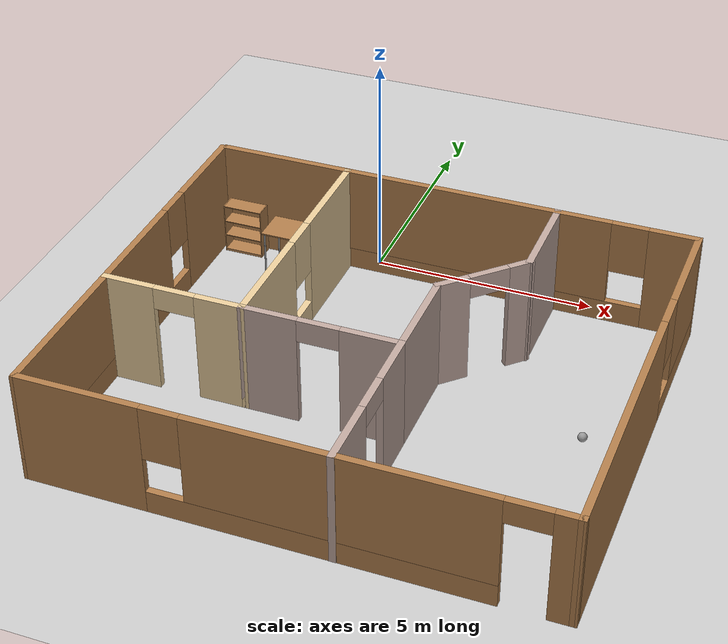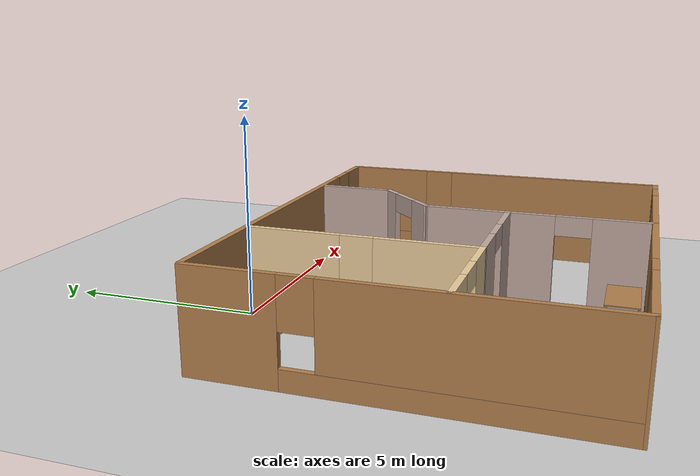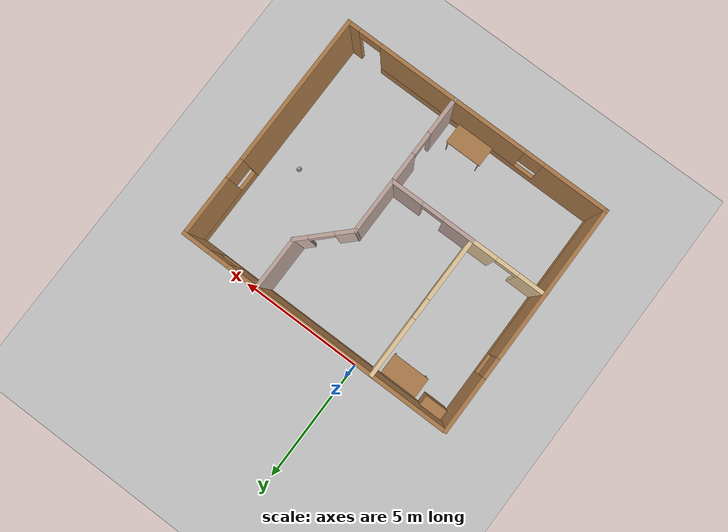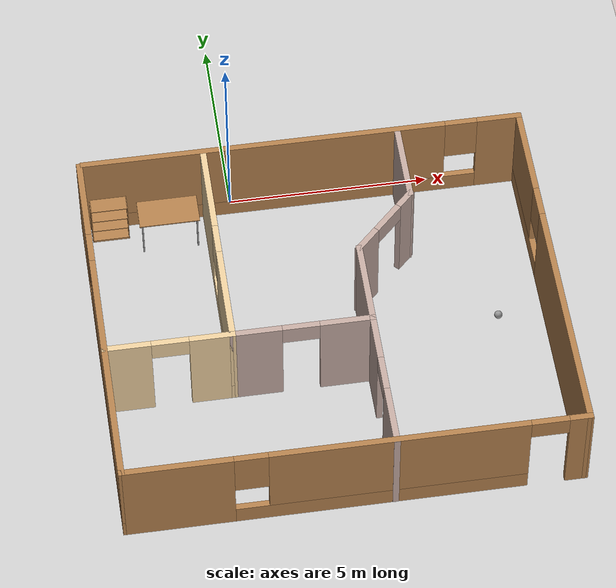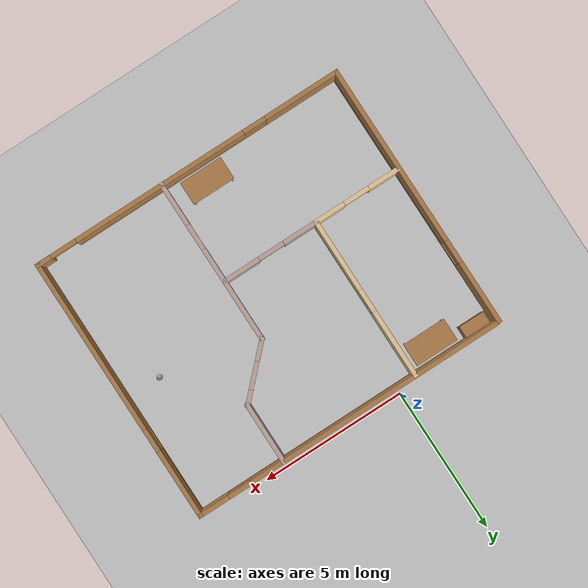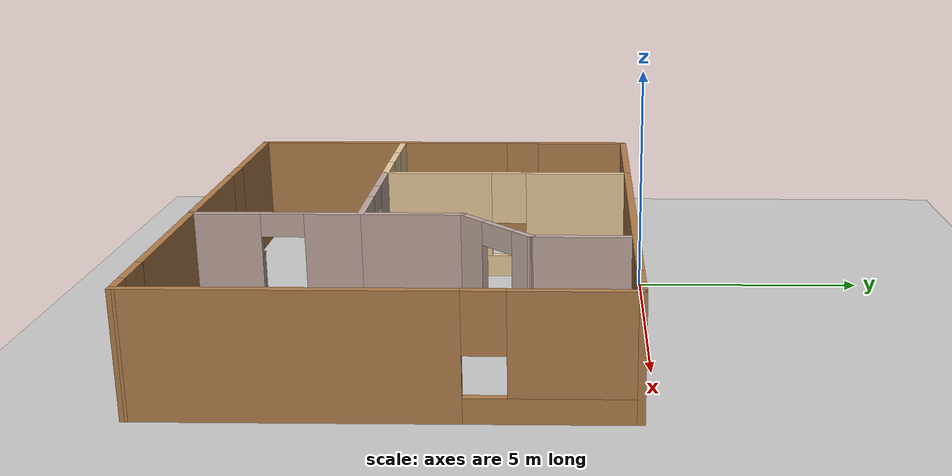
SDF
<sdf version="1.6">
 <world name="default">
  <model name="ground_plane">
   <static>1</static>
   <link name="link">
    <collision name="collision">
     <geometry><plane><normal>0 0 1</normal><size>100 100</size></plane></geometry>
     <surface>
      <contact><collide_bitmask>65535</collide_bitmask></contact>
      <friction><ode><mu>100</mu><mu2>50</mu2></ode></friction>
     </surface>
    </collision>
    <visual name="visual">
     <cast_shadows>0</cast_shadows>
     <geometry><plane><normal>0 0 1</normal><size>100 100</size></plane></geometry>
     <material>
      <script><uri>file://media/materials/scripts/gazebo.material</uri><name>Gazebo/Grey</name></script>
     </material>
    </visual>
   </link>
  </model>
  <model name="wierdMap">
   <pose>1.76051 -4.87689 0 0 -0 0</pose>
   <link name="Wall_52">
    <pose>-5.45927 -0.009076 0 0 0 -1.56748</pose>
    <visual name="Wall_52_Visual_0">
     <pose>-3.52837 0 1.25 0 -0 0</pose>
     <geometry><box><size>2.21553 0.15 2.5</size></box></geometry>
     <material>
      <script><uri>file://media/materials/scripts/gazebo.material</uri><name>Gazebo/Wood</name></script>
      <ambient>1 1 1 1</ambient>
     </material>
     <meta><layer>0</layer></meta>
    </visual>
    <collision name="Wall_52_Collision_0">
     <geometry><box><size>2.21553 0.15 2.5</size></box></geometry>
     <pose>-3.52837 0 1.25 0 -0 0</pose>
    </collision>
    <visual name="Wall_52_Visual_1">
     <pose>1.10776 0 0.25 0 -0 0</pose>
     <geometry><box><size>7.05673 0.15 0.5</size></box></geometry>
     <material>
      <script><uri>file://media/materials/scripts/gazebo.material</uri><name>Gazebo/Wood</name></script>
      <ambient>1 1 1 1</ambient>
     </material>
     <meta><layer>0</layer></meta>
    </visual>
    <collision name="Wall_52_Collision_1">
     <geometry><box><size>7.05673 0.15 0.5</size></box></geometry>
     <pose>1.10776 0 0.25 0 -0 0</pose>
    </collision>
    <visual name="Wall_52_Visual_2">
     <pose>1.50776 0 1.5 0 -0 0</pose>
     <geometry><box><size>6.25673 0.15 2</size></box></geometry>
     <material>
      <script><uri>file://media/materials/scripts/gazebo.material</uri><name>Gazebo/Wood</name></script>
      <ambient>1 1 1 1</ambient>
     </material>
     <meta><layer>0</layer></meta>
    </visual>
    <collision name="Wall_52_Collision_2">
     <geometry><box><size>6.25673 0.15 2</size></box></geometry>
     <pose>1.50776 0 1.5 0 -0 0</pose>
    </collision>
    <visual name="Wall_52_Visual_3">
     <pose>-2.0206 0 1.9 0 -0 0</pose>
     <geometry><box><size>0.8 0.15 1.2</size></box></geometry>
     <material>
      <script><uri>file://media/materials/scripts/gazebo.material</uri><name>Gazebo/Wood</name></script>
      <ambient>1 1 1 1</ambient>
     </material>
     <meta><layer>0</layer></meta>
    </visual>
    <collision name="Wall_52_Collision_3">
     <geometry><box><size>0.8 0.15 1.2</size></box></geometry>
     <pose>-2.0206 0 1.9 0 -0 0</pose>
    </collision>
   </link>
   <link name="Wall_53">
    <pose>0.015206 -4.57618 0 0 0 -0.001099</pose>
    <visual name="Wall_53_Visual_0">
     <pose>-4.19972 0 1.25 0 -0 0</pose>
     <geometry><box><size>2.66927 0.15 2.5</size></box></geometry>
     <material>
      <script><uri>file://media/materials/scripts/gazebo.material</uri><name>Gazebo/Wood</name></script>
      <ambient>1 1 1 1</ambient>
     </material>
     <meta><layer>0</layer></meta>
    </visual>
    <collision name="Wall_53_Collision_0">
     <geometry><box><size>2.66927 0.15 2.5</size></box></geometry>
     <pose>-4.19972 0 1.25 0 -0 0</pose>
    </collision>
    <visual name="Wall_53_Visual_1">
     <pose>5.25308 0 1.25 0 -0 0</pose>
     <geometry><box><size>0.562551 0.15 2.5</size></box></geometry>
     <material>
      <script><uri>file://media/materials/scripts/gazebo.material</uri><name>Gazebo/Wood</name></script>
      <ambient>1 1 1 1</ambient>
     </material>
     <meta><layer>0</layer></meta>
    </visual>
    <collision name="Wall_53_Collision_1">
     <geometry><box><size>0.562551 0.15 2.5</size></box></geometry>
     <pose>5.25308 0 1.25 0 -0 0</pose>
    </collision>
    <visual name="Wall_53_Visual_2">
     <pose>0.603361 0 0.25 0 -0 0</pose>
     <geometry><box><size>6.9369 0.15 0.5</size></box></geometry>
     <material>
      <script><uri>file://media/materials/scripts/gazebo.material</uri><name>Gazebo/Wood</name></script>
      <ambient>1 1 1 1</ambient>
     </material>
     <meta><layer>0</layer></meta>
    </visual>
    <collision name="Wall_53_Collision_2">
     <geometry><box><size>6.9369 0.15 0.5</size></box></geometry>
     <pose>0.603361 0 0.25 0 -0 0</pose>
    </collision>
    <visual name="Wall_53_Visual_3">
     <pose>1.00336 0 1.5 0 -0 0</pose>
     <geometry><box><size>6.1369 0.15 2</size></box></geometry>
     <material>
      <script><uri>file://media/materials/scripts/gazebo.material</uri><name>Gazebo/Wood</name></script>
      <ambient>1 1 1 1</ambient>
     </material>
     <meta><layer>0</layer></meta>
    </visual>
    <collision name="Wall_53_Collision_3">
     <geometry><box><size>6.1369 0.15 2</size></box></geometry>
     <pose>1.00336 0 1.5 0 -0 0</pose>
    </collision>
    <visual name="Wall_53_Visual_4">
     <pose>-2.46509 0 1.9 0 -0 0</pose>
     <geometry><box><size>0.8 0.15 1.2</size></box></geometry>
     <material>
      <script><uri>file://media/materials/scripts/gazebo.material</uri><name>Gazebo/Wood</name></script>
      <ambient>1 1 1 1</ambient>
     </material>
     <meta><layer>0</layer></meta>
    </visual>
    <collision name="Wall_53_Collision_4">
     <geometry><box><size>0.8 0.15 1.2</size></box></geometry>
     <pose>-2.46509 0 1.9 0 -0 0</pose>
    </collision>
    <visual name="Wall_53_Visual_5">
     <pose>4.52181 0 2.25 0 -0 0</pose>
     <geometry><box><size>0.9 0.15 0.5</size></box></geometry>
     <material>
      <script><uri>file://media/materials/scripts/gazebo.material</uri><name>Gazebo/Wood</name></script>
      <ambient>1 1 1 1</ambient>
     </material>
     <meta><layer>0</layer></meta>
    </visual>
    <collision name="Wall_53_Collision_5">
     <geometry><box><size>0.9 0.15 0.5</size></box></geometry>
     <pose>4.52181 0 2.25 0 -0 0</pose>
    </collision>
   </link>
   <link name="Wall_54">
    <pose>5.47456 4.5e-05 0 0 -0 1.5708</pose>
    <visual name="Wall_54_Visual_0">
     <pose>-1.61369 0 1.25 0 -0 0</pose>
     <geometry><box><size>6.08712 0.15 2.5</size></box></geometry>
     <material>
      <script><uri>file://media/materials/scripts/gazebo.material</uri><name>Gazebo/Wood</name></script>
      <ambient>1 1 1 1</ambient>
     </material>
     <meta><layer>0</layer></meta>
    </visual>
    <collision name="Wall_54_Collision_0">
     <geometry><box><size>6.08712 0.15 2.5</size></box></geometry>
     <pose>-1.61369 0 1.25 0 -0 0</pose>
    </collision>
    <visual name="Wall_54_Visual_1">
     <pose>3.04356 0 0.25 0 -0 0</pose>
     <geometry><box><size>3.22739 0.15 0.5</size></box></geometry>
     <material>
      <script><uri>file://media/materials/scripts/gazebo.material</uri><name>Gazebo/Wood</name></script>
      <ambient>1 1 1 1</ambient>
     </material>
     <meta><layer>0</layer></meta>
    </visual>
    <collision name="Wall_54_Collision_1">
     <geometry><box><size>3.22739 0.15 0.5</size></box></geometry>
     <pose>3.04356 0 0.25 0 -0 0</pose>
    </collision>
    <visual name="Wall_54_Visual_2">
     <pose>3.44356 0 1.5 0 -0 0</pose>
     <geometry><box><size>2.42739 0.15 2</size></box></geometry>
     <material>
      <script><uri>file://media/materials/scripts/gazebo.material</uri><name>Gazebo/Wood</name></script>
      <ambient>1 1 1 1</ambient>
     </material>
     <meta><layer>0</layer></meta>
    </visual>
    <collision name="Wall_54_Collision_2">
     <geometry><box><size>2.42739 0.15 2</size></box></geometry>
     <pose>3.44356 0 1.5 0 -0 0</pose>
    </collision>
    <visual name="Wall_54_Visual_3">
     <pose>1.82987 0 1.9 0 -0 0</pose>
     <geometry><box><size>0.8 0.15 1.2</size></box></geometry>
     <material>
      <script><uri>file://media/materials/scripts/gazebo.material</uri><name>Gazebo/Wood</name></script>
      <ambient>1 1 1 1</ambient>
     </material>
     <meta><layer>0</layer></meta>
    </visual>
    <collision name="Wall_54_Collision_3">
     <geometry><box><size>0.8 0.15 1.2</size></box></geometry>
     <pose>1.82987 0 1.9 0 -0 0</pose>
    </collision>
   </link>
   <link name="Wall_55">
    <pose>0.049563 4.58228 0 0 -0 3.14159</pose>
    <visual name="Wall_55_Visual_0">
     <pose>-4.9366 0 1.25 0 -0 0</pose>
     <geometry><box><size>1.1268 0.15 2.5</size></box></geometry>
     <material>
      <script><uri>file://media/materials/scripts/gazebo.material</uri><name>Gazebo/Wood</name></script>
      <ambient>1 1 1 1</ambient>
     </material>
     <meta><layer>0</layer></meta>
    </visual>
    <collision name="Wall_55_Collision_0">
     <geometry><box><size>1.1268 0.15 2.5</size></box></geometry>
     <pose>-4.9366 0 1.25 0 -0 0</pose>
    </collision>
    <visual name="Wall_55_Visual_1">
     <pose>0.563398 0 0.25 0 -0 0</pose>
     <geometry><box><size>9.8732 0.15 0.5</size></box></geometry>
     <material>
      <script><uri>file://media/materials/scripts/gazebo.material</uri><name>Gazebo/Wood</name></script>
      <ambient>1 1 1 1</ambient>
     </material>
     <meta><layer>0</layer></meta>
    </visual>
    <collision name="Wall_55_Collision_1">
     <geometry><box><size>9.8732 0.15 0.5</size></box></geometry>
     <pose>0.563398 0 0.25 0 -0 0</pose>
    </collision>
    <visual name="Wall_55_Visual_2">
     <pose>0.963398 0 1.5 0 -0 0</pose>
     <geometry><box><size>9.0732 0.15 2</size></box></geometry>
     <material>
      <script><uri>file://media/materials/scripts/gazebo.material</uri><name>Gazebo/Wood</name></script>
      <ambient>1 1 1 1</ambient>
     </material>
     <meta><layer>0</layer></meta>
    </visual>
    <collision name="Wall_55_Collision_2">
     <geometry><box><size>9.0732 0.15 2</size></box></geometry>
     <pose>0.963398 0 1.5 0 -0 0</pose>
    </collision>
    <visual name="Wall_55_Visual_3">
     <pose>-3.9732 0 1.9 0 -0 0</pose>
     <geometry><box><size>0.8 0.15 1.2</size></box></geometry>
     <material>
      <script><uri>file://media/materials/scripts/gazebo.material</uri><name>Gazebo/Wood</name></script>
      <ambient>1 1 1 1</ambient>
     </material>
     <meta><layer>0</layer></meta>
    </visual>
    <collision name="Wall_55_Collision_3">
     <geometry><box><size>0.8 0.15 1.2</size></box></geometry>
     <pose>-3.9732 0 1.9 0 -0 0</pose>
    </collision>
   </link>
   <link name="Wall_57">
    <pose>-2.41958 1.75203 0 0 0 -1.5708</pose>
    <visual name="Wall_57_Visual_0">
     <pose>-1.67644 0 1.25 0 -0 0</pose>
     <geometry><box><size>2.39712 0.15 2.5</size></box></geometry>
     <material>
      <script><uri>file://media/materials/scripts/gazebo.material</uri><name>Gazebo/Grey</name></script>
      <ambient>0.921569 0.807843 0.615686 1</ambient>
     </material>
     <meta><layer>0</layer></meta>
    </visual>
    <collision name="Wall_57_Collision_0">
     <geometry><box><size>2.39712 0.15 2.5</size></box></geometry>
     <pose>-1.67644 0 1.25 0 -0 0</pose>
    </collision>
    <visual name="Wall_57_Visual_1">
     <pose>1.19856 0 0.25 0 -0 0</pose>
     <geometry><box><size>3.35288 0.15 0.5</size></box></geometry>
     <material>
      <script><uri>file://media/materials/scripts/gazebo.material</uri><name>Gazebo/Grey</name></script>
      <ambient>0.921569 0.807843 0.615686 1</ambient>
     </material>
     <meta><layer>0</layer></meta>
    </visual>
    <collision name="Wall_57_Collision_1">
     <geometry><box><size>3.35288 0.15 0.5</size></box></geometry>
     <pose>1.19856 0 0.25 0 -0 0</pose>
    </collision>
    <visual name="Wall_57_Visual_2">
     <pose>1.59856 0 1.5 0 -0 0</pose>
     <geometry><box><size>2.55288 0.15 2</size></box></geometry>
     <material>
      <script><uri>file://media/materials/scripts/gazebo.material</uri><name>Gazebo/Grey</name></script>
      <ambient>0.921569 0.807843 0.615686 1</ambient>
     </material>
     <meta><layer>0</layer></meta>
    </visual>
    <collision name="Wall_57_Collision_2">
     <geometry><box><size>2.55288 0.15 2</size></box></geometry>
     <pose>1.59856 0 1.5 0 -0 0</pose>
    </collision>
    <visual name="Wall_57_Visual_3">
     <pose>-0.077883 0 1.9 0 -0 0</pose>
     <geometry><box><size>0.8 0.15 1.2</size></box></geometry>
     <material>
      <script><uri>file://media/materials/scripts/gazebo.material</uri><name>Gazebo/Grey</name></script>
      <ambient>0.921569 0.807843 0.615686 1</ambient>
     </material>
     <meta><layer>0</layer></meta>
    </visual>
    <collision name="Wall_57_Collision_3">
     <geometry><box><size>0.8 0.15 1.2</size></box></geometry>
     <pose>-0.077883 0 1.9 0 -0 0</pose>
    </collision>
   </link>
   <link name="Wall_58">
    <pose>-3.93186 -1.0457 0 0 -0 3.14009</pose>
    <visual name="Wall_58_Visual_0">
     <pose>-1.03377 0 1.25 0 -0 0</pose>
     <geometry><box><size>1.10715 0.15 2.5</size></box></geometry>
     <material>
      <script><uri>file://media/materials/scripts/gazebo.material</uri><name>Gazebo/Grey</name></script>
      <ambient>0.921569 0.807843 0.615686 1</ambient>
     </material>
     <meta><layer>0</layer></meta>
    </visual>
    <collision name="Wall_58_Collision_0">
     <geometry><box><size>1.10715 0.15 2.5</size></box></geometry>
     <pose>-1.03377 0 1.25 0 -0 0</pose>
    </collision>
    <visual name="Wall_58_Visual_1">
     <pose>1.00357 0 1.25 0 -0 0</pose>
     <geometry><box><size>1.16754 0.15 2.5</size></box></geometry>
     <material>
      <script><uri>file://media/materials/scripts/gazebo.material</uri><name>Gazebo/Grey</name></script>
      <ambient>0.921569 0.807843 0.615686 1</ambient>
     </material>
     <meta><layer>0</layer></meta>
    </visual>
    <collision name="Wall_58_Collision_1">
     <geometry><box><size>1.16754 0.15 2.5</size></box></geometry>
     <pose>1.00357 0 1.25 0 -0 0</pose>
    </collision>
    <visual name="Wall_58_Visual_2">
     <pose>-0.030197 0 2.25 0 -0 0</pose>
     <geometry><box><size>0.9 0.15 0.5</size></box></geometry>
     <material>
      <script><uri>file://media/materials/scripts/gazebo.material</uri><name>Gazebo/Grey</name></script>
      <ambient>0.921569 0.807843 0.615686 1</ambient>
     </material>
     <meta><layer>0</layer></meta>
    </visual>
    <collision name="Wall_58_Collision_2">
     <geometry><box><size>0.9 0.15 0.5</size></box></geometry>
     <pose>-0.030197 0 2.25 0 -0 0</pose>
    </collision>
   </link>
   <link name="Wall_60">
    <pose>-0.744577 -1.04797 0 0 -0 0</pose>
    <visual name="Wall_60_Visual_0">
     <pose>-1.12087 0 1.25 0 -0 0</pose>
     <geometry><box><size>1.25827 0.15 2.5</size></box></geometry>
     <material>
      <script><uri>file://media/materials/scripts/gazebo.material</uri><name>Gazebo/Grey</name></script>
      <ambient>0.760784 0.662745 0.627451 1</ambient>
     </material>
     <meta><layer>0</layer></meta>
    </visual>
    <collision name="Wall_60_Collision_0">
     <geometry><box><size>1.25827 0.15 2.5</size></box></geometry>
     <pose>-1.12087 0 1.25 0 -0 0</pose>
    </collision>
    <visual name="Wall_60_Visual_1">
     <pose>1.07913 0 1.25 0 -0 0</pose>
     <geometry><box><size>1.34173 0.15 2.5</size></box></geometry>
     <material>
      <script><uri>file://media/materials/scripts/gazebo.material</uri><name>Gazebo/Grey</name></script>
      <ambient>0.760784 0.662745 0.627451 1</ambient>
     </material>
     <meta><layer>0</layer></meta>
    </visual>
    <collision name="Wall_60_Collision_1">
     <geometry><box><size>1.34173 0.15 2.5</size></box></geometry>
     <pose>1.07913 0 1.25 0 -0 0</pose>
    </collision>
    <visual name="Wall_60_Visual_2">
     <pose>-0.04173 0 2.25 0 -0 0</pose>
     <geometry><box><size>0.9 0.15 0.5</size></box></geometry>
     <material>
      <script><uri>file://media/materials/scripts/gazebo.material</uri><name>Gazebo/Grey</name></script>
      <ambient>0.760784 0.662745 0.627451 1</ambient>
     </material>
     <meta><layer>0</layer></meta>
    </visual>
    <collision name="Wall_60_Collision_2">
     <geometry><box><size>0.9 0.15 0.5</size></box></geometry>
     <pose>-0.04173 0 2.25 0 -0 0</pose>
    </collision>
   </link>
   <link name="Wall_61">
    <collision name="Wall_61_Collision">
     <geometry><box><size>2.25 0.15 2.5</size></box></geometry>
     <pose>0 0 1.25 0 -0 0</pose>
    </collision>
    <visual name="Wall_61_Visual">
     <pose>0 0 1.25 0 -0 0</pose>
     <geometry><box><size>2.25 0.15 2.5</size></box></geometry>
     <material>
      <script><uri>file://media/materials/scripts/gazebo.material</uri><name>Gazebo/Grey</name></script>
      <ambient>0.760784 0.662745 0.627451 1</ambient>
     </material>
     <meta><layer>0</layer></meta>
    </visual>
    <pose>0.930423 0.00203 0 0 -0 1.5708</pose>
   </link>
   <link name="Wall_62">
    <pose>1.67288 1.79449 0 0 -0 0.785398</pose>
    <visual name="Wall_62_Visual_0">
     <pose>-0.735486 0 1.25 0 -0 0</pose>
     <geometry><box><size>0.779028 0.15 2.5</size></box></geometry>
     <material>
      <script><uri>file://media/materials/scripts/gazebo.material</uri><name>Gazebo/Grey</name></script>
      <ambient>0.760784 0.662745 0.627451 1</ambient>
     </material>
     <meta><layer>0</layer></meta>
    </visual>
    <collision name="Wall_62_Collision_0">
     <geometry><box><size>0.779028 0.15 2.5</size></box></geometry>
     <pose>-0.735486 0 1.25 0 -0 0</pose>
    </collision>
    <visual name="Wall_62_Visual_1">
     <pose>0.839514 0 1.25 0 -0 0</pose>
     <geometry><box><size>0.570972 0.15 2.5</size></box></geometry>
     <material>
      <script><uri>file://media/materials/scripts/gazebo.material</uri><name>Gazebo/Grey</name></script>
      <ambient>0.760784 0.662745 0.627451 1</ambient>
     </material>
     <meta><layer>0</layer></meta>
    </visual>
    <collision name="Wall_62_Collision_1">
     <geometry><box><size>0.570972 0.15 2.5</size></box></geometry>
     <pose>0.839514 0 1.25 0 -0 0</pose>
    </collision>
    <visual name="Wall_62_Visual_2">
     <pose>0.104028 0 2.25 0 -0 0</pose>
     <geometry><box><size>0.9 0.15 0.5</size></box></geometry>
     <material>
      <script><uri>file://media/materials/scripts/gazebo.material</uri><name>Gazebo/Grey</name></script>
      <ambient>0.760784 0.662745 0.627451 1</ambient>
     </material>
     <meta><layer>0</layer></meta>
    </visual>
    <collision name="Wall_62_Collision_2">
     <geometry><box><size>0.9 0.15 0.5</size></box></geometry>
     <pose>0.104028 0 2.25 0 -0 0</pose>
    </collision>
   </link>
   <link name="Wall_63">
    <collision name="Wall_63_Collision">
     <geometry><box><size>2.19533 0.15 2.5</size></box></geometry>
     <pose>0 0 1.25 0 -0 0</pose>
    </collision>
    <visual name="Wall_63_Visual">
     <pose>0 0 1.25 0 -0 0</pose>
     <geometry><box><size>2.19533 0.15 2.5</size></box></geometry>
     <material>
      <script><uri>file://media/materials/scripts/gazebo.material</uri><name>Gazebo/Grey</name></script>
      <ambient>0.760784 0.662745 0.627451 1</ambient>
     </material>
     <meta><layer>0</layer></meta>
    </visual>
    <pose>2.41755 3.55961 0 0 -0 1.56865</pose>
   </link>
   <link name="Wall_65">
    <pose>0.934062 -2.81508 0 0 0 -1.56874</pose>
    <visual name="Wall_65_Visual_0">
     <pose>-1.21538 0 1.25 0 -0 0</pose>
     <geometry><box><size>1.25365 0.15 2.5</size></box></geometry>
     <material>
      <script><uri>file://media/materials/scripts/gazebo.material</uri><name>Gazebo/Grey</name></script>
      <ambient>0.760784 0.662745 0.627451 1</ambient>
     </material>
     <meta><layer>0</layer></meta>
    </visual>
    <collision name="Wall_65_Collision_0">
     <geometry><box><size>1.25365 0.15 2.5</size></box></geometry>
     <pose>-1.21538 0 1.25 0 -0 0</pose>
    </collision>
    <visual name="Wall_65_Visual_1">
     <pose>1.07683 0 1.25 0 -0 0</pose>
     <geometry><box><size>1.53076 0.15 2.5</size></box></geometry>
     <material>
      <script><uri>file://media/materials/scripts/gazebo.material</uri><name>Gazebo/Grey</name></script>
      <ambient>0.760784 0.662745 0.627451 1</ambient>
     </material>
     <meta><layer>0</layer></meta>
    </visual>
    <collision name="Wall_65_Collision_1">
     <geometry><box><size>1.53076 0.15 2.5</size></box></geometry>
     <pose>1.07683 0 1.25 0 -0 0</pose>
    </collision>
    <visual name="Wall_65_Visual_2">
     <pose>-0.138553 0 2.25 0 -0 0</pose>
     <geometry><box><size>0.9 0.15 0.5</size></box></geometry>
     <material>
      <script><uri>file://media/materials/scripts/gazebo.material</uri><name>Gazebo/Grey</name></script>
      <ambient>0.760784 0.662745 0.627451 1</ambient>
     </material>
     <meta><layer>0</layer></meta>
    </visual>
    <collision name="Wall_65_Collision_2">
     <geometry><box><size>0.9 0.15 0.5</size></box></geometry>
     <pose>-0.138553 0 2.25 0 -0 0</pose>
    </collision>
   </link>
   <static>1</static>
  </model>
  <model name="bookshelf">
   <static>1</static>
   <link name="link">
    <inertial><mass>1</mass></inertial>
    <collision name="back">
     <pose>0 0.005 0.6 0 -0 0</pose>
     <geometry><box><size>0.9 0.01 1.2</size></box></geometry>
    </collision>
    <visual name="visual1">
     <pose>0 0.005 0.6 0 -0 0</pose>
     <geometry><box><size>0.9 0.01 1.2</size></box></geometry>
     <material>
      <script><uri>file://media/materials/scripts/gazebo.material</uri><name>Gazebo/Wood</name></script>
     </material>
    </visual>
    <collision name="left_side">
     <pose>0.45 -0.195 0.6 0 -0 0</pose>
     <geometry><box><size>0.02 0.4 1.2</size></box></geometry>
    </collision>
    <visual name="visual2">
     <pose>0.45 -0.195 0.6 0 -0 0</pose>
     <geometry><box><size>0.02 0.4 1.2</size></box></geometry>
     <material>
      <script><uri>file://media/materials/scripts/gazebo.material</uri><name>Gazebo/Wood</name></script>
     </material>
    </visual>
    <collision name="right_side">
     <pose>-0.45 -0.195 0.6 0 -0 0</pose>
     <geometry><box><size>0.02 0.4 1.2</size></box></geometry>
    </collision>
    <visual name="visual3">
     <pose>-0.45 -0.195 0.6 0 -0 0</pose>
     <geometry><box><size>0.02 0.4 1.2</size></box></geometry>
     <material>
      <script><uri>file://media/materials/scripts/gazebo.material</uri><name>Gazebo/Wood</name></script>
     </material>
    </visual>
    <collision name="bottom">
     <pose>0 -0.195 0.03 0 -0 0</pose>
     <geometry><box><size>0.88 0.4 0.06</size></box></geometry>
    </collision>
    <visual name="visual4">
     <pose>0 -0.195 0.03 0 -0 0</pose>
     <geometry><box><size>0.88 0.4 0.06</size></box></geometry>
     <material>
      <script><uri>file://media/materials/scripts/gazebo.material</uri><name>Gazebo/Wood</name></script>
     </material>
    </visual>
    <collision name="top">
     <pose>0 -0.195 1.19 0 -0 0</pose>
     <geometry><box><size>0.88 0.4 0.02</size></box></geometry>
    </collision>
    <visual name="visual5">
     <pose>0 -0.195 1.19 0 -0 0</pose>
     <geometry><box><size>0.88 0.4 0.02</size></box></geometry>
     <material>
      <script><uri>file://media/materials/scripts/gazebo.material</uri><name>Gazebo/Wood</name></script>
     </material>
    </visual>
    <collision name="low_shelf">
     <pose>0 -0.195 0.43 0 -0 0</pose>
     <geometry><box><size>0.88 0.4 0.02</size></box></geometry>
    </collision>
    <visual name="visual6">
     <pose>0 -0.195 0.43 0 -0 0</pose>
     <geometry><box><size>0.88 0.4 0.02</size></box></geometry>
     <material>
      <script><uri>file://media/materials/scripts/gazebo.material</uri><name>Gazebo/Wood</name></script>
     </material>
    </visual>
    <collision name="high_shelf">
     <pose>0 -0.195 0.8 0 -0 0</pose>
     <geometry><box><size>0.88 0.4 0.02</size></box></geometry>
    </collision>
    <visual name="visual7">
     <pose>0 -0.195 0.8 0 -0 0</pose>
     <geometry><box><size>0.88 0.4 0.02</size></box></geometry>
     <material>
      <script><uri>file://media/materials/scripts/gazebo.material</uri><name>Gazebo/Wood</name></script>
     </material>
    </visual>
   </link>
   <pose>-3.09381 -0.386625 0 0 -0 0</pose>
  </model>
  <model name="table">
   <static>1</static>
   <link name="link">
    <collision name="surface">
     <pose>0 0 1 0 -0 0</pose>
     <geometry><box><size>1.5 0.8 0.03</size></box></geometry>
     <surface><friction><ode><mu>0.6</mu><mu2>0.6</mu2></ode></friction></surface>
    </collision>
    <visual name="visual1">
     <pose>0 0 1 0 -0 0</pose>
     <geometry><box><size>1.5 0.8 0.03</size></box></geometry>
     <material>
      <script><uri>file://media/materials/scripts/gazebo.material</uri><name>Gazebo/Wood</name></script>
     </material>
    </visual>
    <collision name="front_left_leg">
     <pose>0.68 0.38 0.5 0 -0 0</pose>
     <geometry><cylinder><radius>0.02</radius><length>1</length></cylinder></geometry>
    </collision>
    <visual name="front_left_leg">
     <pose>0.68 0.38 0.5 0 -0 0</pose>
     <geometry><cylinder><radius>0.02</radius><length>1</length></cylinder></geometry>
     <material>
      <script><uri>file://media/materials/scripts/gazebo.material</uri><name>Gazebo/Grey</name></script>
     </material>
    </visual>
    <collision name="front_right_leg">
     <pose>0.68 -0.38 0.5 0 -0 0</pose>
     <geometry><cylinder><radius>0.02</radius><length>1</length></cylinder></geometry>
    </collision>
    <visual name="front_right_leg">
     <pose>0.68 -0.38 0.5 0 -0 0</pose>
     <geometry><cylinder><radius>0.02</radius><length>1</length></cylinder></geometry>
     <material>
      <script><uri>file://media/materials/scripts/gazebo.material</uri><name>Gazebo/Grey</name></script>
     </material>
    </visual>
    <collision name="back_right_leg">
     <pose>-0.68 -0.38 0.5 0 -0 0</pose>
     <geometry><cylinder><radius>0.02</radius><length>1</length></cylinder></geometry>
    </collision>
    <visual name="back_right_leg">
     <pose>-0.68 -0.38 0.5 0 -0 0</pose>
     <geometry><cylinder><radius>0.02</radius><length>1</length></cylinder></geometry>
     <material>
      <script><uri>file://media/materials/scripts/gazebo.material</uri><name>Gazebo/Grey</name></script>
     </material>
    </visual>
    <collision name="back_left_leg">
     <pose>-0.68 0.38 0.5 0 -0 0</pose>
     <geometry><cylinder><radius>0.02</radius><length>1</length></cylinder></geometry>
    </collision>
    <visual name="back_left_leg">
     <pose>-0.68 0.38 0.5 0 -0 0</pose>
     <geometry><cylinder><radius>0.02</radius><length>1</length></cylinder></geometry>
     <material>
      <script><uri>file://media/materials/scripts/gazebo.material</uri><name>Gazebo/Grey</name></script>
     </material>
    </visual>
   </link>
   <pose>1.4467 -8.87532 0 0 -0 0</pose>
  </model>
  <model name="table_0">
   <static>1</static>
   <link name="link">
    <collision name="surface">
     <pose>0 0 1 0 -0 0</pose>
     <geometry><box><size>1.5 0.8 0.03</size></box></geometry>
     <surface><friction><ode><mu>0.6</mu><mu2>0.6</mu2></ode></friction></surface>
    </collision>
    <visual name="visual1">
     <pose>0 0 1 0 -0 0</pose>
     <geometry><box><size>1.5 0.8 0.03</size></box></geometry>
     <material>
      <script><uri>file://media/materials/scripts/gazebo.material</uri><name>Gazebo/Wood</name></script>
     </material>
    </visual>
    <collision name="front_left_leg">
     <pose>0.68 0.38 0.5 0 -0 0</pose>
     <geometry><cylinder><radius>0.02</radius><length>1</length></cylinder></geometry>
    </collision>
    <visual name="front_left_leg">
     <pose>0.68 0.38 0.5 0 -0 0</pose>
     <geometry><cylinder><radius>0.02</radius><length>1</length></cylinder></geometry>
     <material>
      <script><uri>file://media/materials/scripts/gazebo.material</uri><name>Gazebo/Grey</name></script>
     </material>
    </visual>
    <collision name="front_right_leg">
     <pose>0.68 -0.38 0.5 0 -0 0</pose>
     <geometry><cylinder><radius>0.02</radius><length>1</length></cylinder></geometry>
    </collision>
    <visual name="front_right_leg">
     <pose>0.68 -0.38 0.5 0 -0 0</pose>
     <geometry><cylinder><radius>0.02</radius><length>1</length></cylinder></geometry>
     <material>
      <script><uri>file://media/materials/scripts/gazebo.material</uri><name>Gazebo/Grey</name></script>
     </material>
    </visual>
    <collision name="back_right_leg">
     <pose>-0.68 -0.38 0.5 0 -0 0</pose>
     <geometry><cylinder><radius>0.02</radius><length>1</length></cylinder></geometry>
    </collision>
    <visual name="back_right_leg">
     <pose>-0.68 -0.38 0.5 0 -0 0</pose>
     <geometry><cylinder><radius>0.02</radius><length>1</length></cylinder></geometry>
     <material>
      <script><uri>file://media/materials/scripts/gazebo.material</uri><name>Gazebo/Grey</name></script>
     </material>
    </visual>
    <collision name="back_left_leg">
     <pose>-0.68 0.38 0.5 0 -0 0</pose>
     <geometry><cylinder><radius>0.02</radius><length>1</length></cylinder></geometry>
    </collision>
    <visual name="back_left_leg">
     <pose>-0.68 0.38 0.5 0 -0 0</pose>
     <geometry><cylinder><radius>0.02</radius><length>1</length></cylinder></geometry>
     <material>
      <script><uri>file://media/materials/scripts/gazebo.material</uri><name>Gazebo/Grey</name></script>
     </material>
    </visual>
   </link>
   <pose>-1.64322 -0.865015 0 0 -0 0</pose>
  </model>
  <model name="myball">
   <link name="link_0">
    <pose>0 0 0.1 0 -0 0</pose>
    <inertial>
     <mass>1</mass>
     <inertia><ixx>0.1</ixx><ixy>0</ixy><ixz>0</ixz><iyy>0.1</iyy><iyz>0</iyz><izz>0.1</izz></inertia>
    </inertial>
    <visual name="visual">
     <geometry><sphere><radius>0.1</radius></sphere></geometry>
     <material>
      <lighting>1</lighting>
      <script><uri>file://media/materials/scripts/gazebo.material</uri><name>Gazebo/Grey</name></script>
      <shader type="pixel"><normal_map>__default__</normal_map></shader>
      <ambient>1 1 1 1</ambient>
      <diffuse>1 1 1 1</diffuse>
      <specular>1 1 1 1</specular>
      <emissive>1 1 1 1</emissive>
     </material>
    </visual>
    <collision name="collision">
     <geometry><sphere><radius>0.1</radius></sphere></geometry>
     <surface>
      <friction>
       <ode><mu>1</mu><mu2>1</mu2><fdir1>0 0 0</fdir1><slip1>0</slip1><slip2>0</slip2></ode>
       <torsional>
        <coefficient>1</coefficient>
        <patch_radius>0</patch_radius>
        <surface_radius>0</surface_radius>
        <use_patch_radius>1</use_patch_radius>
        <ode><slip>0</slip></ode>
       </torsional>
      </friction>
      <bounce><restitution_coefficient>0</restitution_coefficient><threshold>1e+06</threshold></bounce>
      <contact>
       <collide_without_contact>0</collide_without_contact>
       <collide_without_contact_bitmask>1</collide_without_contact_bitmask>
       <collide_bitmask>1</collide_bitmask>
       <ode>
        <soft_cfm>0</soft_cfm>
        <soft_erp>0.2</soft_erp>
        <kp>1e+13</kp>
        <kd>1</kd>
        <max_vel>0.01</max_vel>
        <min_depth>0</min_depth>
       </ode>
       <bullet>
        <split_impulse>1</split_impulse>
        <split_impulse_penetration_threshold>-0.01</split_impulse_penetration_threshold>
        <soft_cfm>0</soft_cfm>
        <soft_erp>0.2</soft_erp>
        <kp>1e+13</kp>
        <kd>1</kd>
       </bullet>
      </contact>
     </surface>
    </collision>
   </link>
   <static>0</static>
   <pose>6.05702 -4.55678 0 0 -0 0</pose>
  </model>
 </world>
</sdf>
